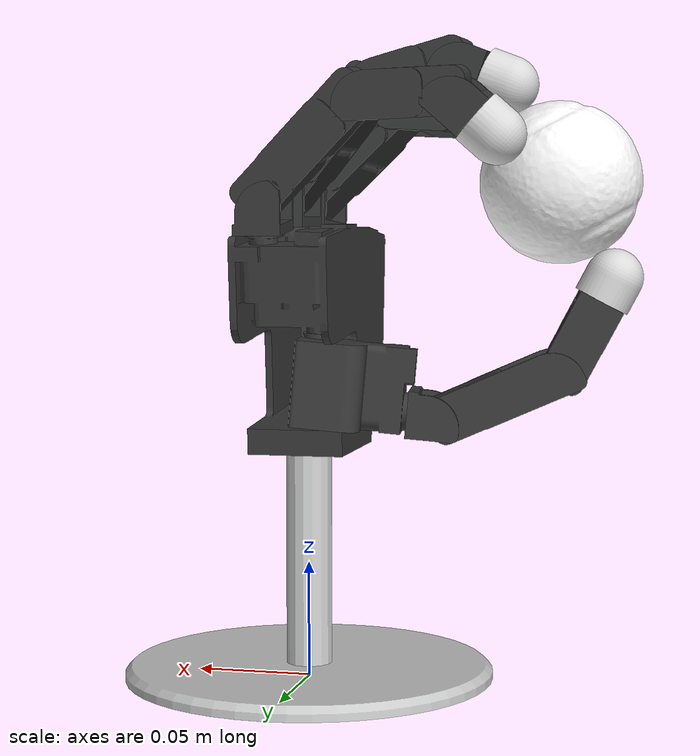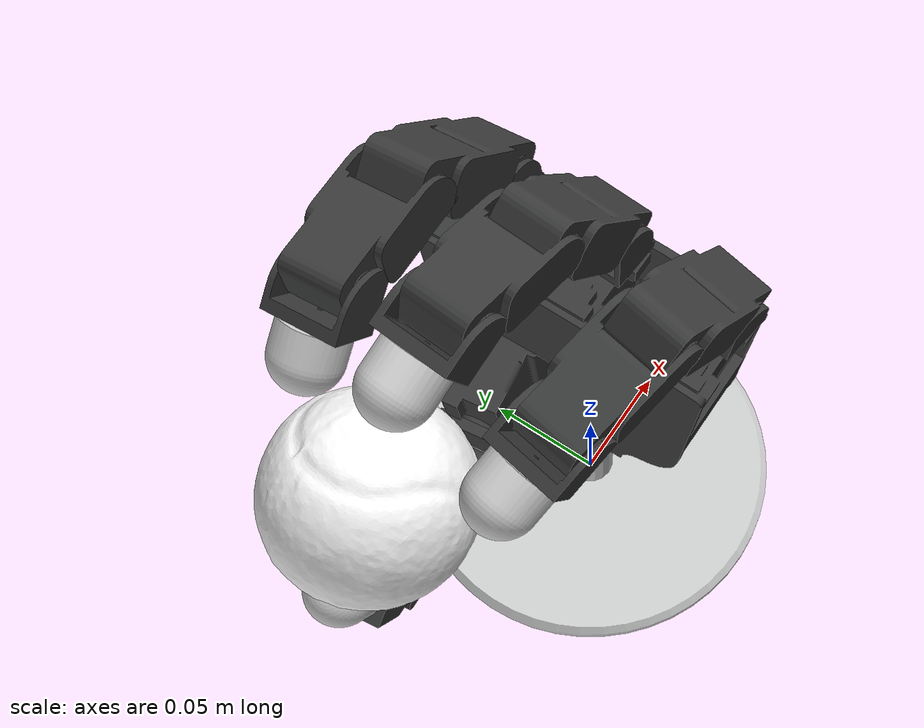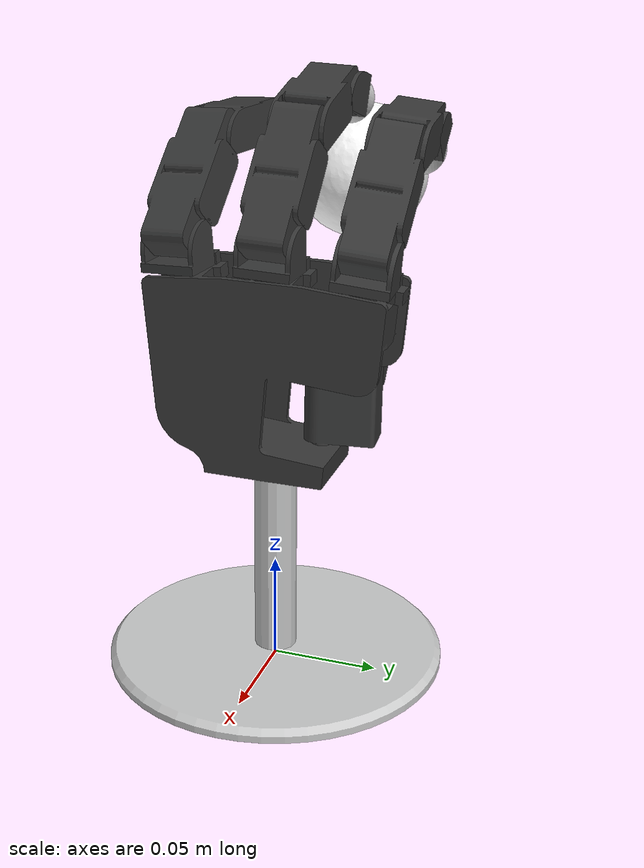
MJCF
<mujoco>
  <compiler angle="radian" meshdir="assets"/>
  <option>
    <flag/>
  </option>
  <statistic/>
  <asset>
    <texture type="2d" colorspace="linear" name="noise_normal" file="noise_normal.png.001"/>
    <texture type="2d" colorspace="sRGB" name="texture_map" file="texture_map.png"/>
    <material name="aluminum_rough" rgba="0.7946537 0.7973532 0.7977377 1.0" reflectance="0.5" roughness="0.5" metallic="1.0" texuniform="true" texrepeat="2.0 2.0">
      <layer texture="noise_normal" role="normal"/>
    </material>
    <material name="black_metal" rgba="0.220085 0.220813 0.2209164 1.0" reflectance="0.5" roughness="0.5" metallic="1.0" texuniform="true" texrepeat="8.0 8.0">
      <layer texture="noise_normal" role="normal"/>
    </material>
    <material name="black_rubber" rgba="0.8543058 0.8543058 0.8543058 1.0" reflectance="0.5" roughness="0.7" metallic="0.0" texuniform="true" texrepeat="16.0 16.0">
      <layer texture="noise_normal" role="normal"/>
    </material>
    <material name="material_0" rgba="1.0 1.0 1.0 1.0" reflectance="0.5" roughness="1.0" metallic="0.0">
      <layer texture="texture_map" role="rgb"/>
    </material>
    <material name="template" rgba="0.9063318 0.9063318 0.9063318 1.0" reflectance="0.5" roughness="0.5" metallic="0.0"/>
    <mesh name="base" file="base.obj"/>
    <mesh name="base_link" file="base_link.obj"/>
    <mesh name="link_0_0" file="link_0_0.obj"/>
    <mesh name="link_1_0" file="link_1_0.obj"/>
    <mesh name="link_2_0" file="link_2_0.obj"/>
    <mesh name="link_3_0" file="link_3_0.obj"/>
    <mesh name="link_3_0_tip" file="link_3_0_tip.obj"/>
    <mesh name="link_12_0_right" file="link_12_0_right.obj"/>
    <mesh name="link_13_0" file="link_13_0.obj"/>
    <mesh name="link_14_0" file="link_14_0.obj"/>
    <mesh name="link_15_0" file="link_15_0.obj"/>
    <mesh name="link_15_0_tip" file="link_15_0_tip.obj"/>
    <mesh name="ball" file="ball.obj"/>
  </asset>
  <worldbody>
    <geom name="base" pos="0.0 0.0 0.0" quat="1.0 0.0 0.0 0.0" type="mesh" mesh="base" material="aluminum_rough" group="2"/>
    <body name="palm" pos="0.008 0.0 0.195" quat="1.0 0.0 0.0 0.0" gravcomp="1.0">
      <geom name="ball" pos="-0.1172307 0.0058808 0.019121" quat="0.7071068 0.7071068 0.0 0.0" type="mesh" mesh="ball" material="material_0" group="2"/>
      <geom name="base_link" pos="0.0 0.0 0.0" quat="1.0 0.0 0.0 0.0" type="mesh" mesh="base_link" material="black_metal" group="2" contype="0" conaffinity="0" density="800.0"/>
      <geom name="GEO_Box" pos="-0.0093 0.0 -0.0475" quat="1.0 0.0 0.0 0.0" type="box" size="0.0204 0.0565 0.0475" material="template" group="3" density="800.0"/>
      <body name="ff_base" pos="0.0 0.0435 -0.001542" quat="0.9987252 -0.0436053 -0.0011092 0.0254042">
        <joint name="ffj0" pos="0.0 0.0 0.0" axis="0.0 0.0 1.0" type="hinge" range="-0.47 0.47" armature="0.01" damping="0.1"/>
        <geom name="GEO_Box_001" pos="0.0 0.0 0.0082" quat="0.9987252 0.0436053 0.0011092 -0.0254042" type="box" size="0.0098 0.01375 0.0082" material="template" group="3" density="800.0"/>
        <geom name="link_0_0" pos="0.0 0.0 0.0" quat="1.0 0.0 -0.0 -0.0" type="mesh" mesh="link_0_0" material="black_metal" group="2" contype="0" conaffinity="0" density="800.0"/>
        <body name="ff_proximal" pos="-0.0 0.0 0.0164" quat="0.9275916 0.0 -0.3735958 -0.0">
          <joint name="ffj1" pos="0.0 0.0 0.0" axis="-0.0 1.0 1e-07" type="hinge" range="-0.196 1.61" armature="0.01" damping="0.1"/>
          <geom name="GEO_Box_002" pos="0.0 0.0 0.027" quat="0.9259947 0.030957 0.3741484 -0.0398555" type="box" size="0.0098 0.01375 0.027" material="template" group="3" density="800.0"/>
          <geom name="link_1_0" pos="0.0 0.0 -0.0" quat="1.0 -0.0 0.0 0.0" type="mesh" mesh="link_1_0" material="black_metal" group="2" contype="0" conaffinity="0" density="800.0"/>
          <body name="ff_medial" pos="0.0 -0.0 0.0539999" quat="0.9275985 -0.0 -0.3735787 0.0">
            <joint name="ffj2" pos="0.0 0.0 0.0" axis="-0.0 1.0 1e-07" type="hinge" range="-0.174 1.709" armature="0.01" damping="0.1"/>
            <geom name="GEO_Box_003" pos="0.0 0.0 0.0192" quat="0.7191774 0.0138266 0.6929914 -0.0485347" type="box" size="0.0098 0.01375 0.0192" material="template" group="3" density="800.0"/>
            <geom name="link_2_0" pos="0.0 0.0 0.0" quat="1.0 0.0 0.0 0.0" type="mesh" mesh="link_2_0" material="black_metal" group="2" contype="0" conaffinity="0" density="800.0"/>
            <body name="ff_distal" pos="1e-07 0.0 0.0384" quat="0.9275892 0.0 -0.3736019 0.0">
              <joint name="ffj3" pos="0.0 0.0 0.0" axis="0.0 1.0 1e-07" type="hinge" range="-0.227 1.618" armature="0.01" damping="0.1"/>
              <geom name="GEO_Box_004" pos="0.0 0.0 0.008" quat="0.4081984 -0.0053074 0.9114973 -0.0501859" type="box" size="0.0098 0.01375 0.008" material="template" group="3" density="800.0"/>
              <geom name="link_3_0" pos="-0.0 0.0 0.0" quat="1.0 0.0 0.0 -0.0" type="mesh" mesh="link_3_0" material="black_metal" group="2" contype="0" conaffinity="0" density="800.0"/>
              <body name="ff_tip" pos="-0.0 0.0 -0.0" quat="1.0 0.0 1e-07 -0.0">
                <geom name="ff_tip_col" pos="0.0 0.0 0.019" quat="0.4081984 -0.0053074 0.9114972 -0.0501859" type="capsule" size="0.012 0.01" material="template" group="3" condim="6" friction="2.0 0.05 0.01" density="800.0"/>
                <geom name="link_3_0_tip" pos="0.0 -0.0 0.0267" quat="1.0 0.0 -0.0 0.0" type="mesh" mesh="link_3_0_tip" material="black_rubber" group="2" contype="0" conaffinity="0" density="800.0"/>
              </body>
            </body>
          </body>
        </body>
      </body>
      <body name="mf_base" pos="0.0 0.0 0.0007" quat="0.9995176 0.0 0.0 -0.0310589">
        <joint name="mfj0" pos="0.0 0.0 0.0" axis="0.0 0.0 1.0" type="hinge" range="-0.47 0.47" armature="0.01" damping="0.1"/>
        <geom name="GEO_Box_005" pos="0.0 0.0 0.0082" quat="0.9995176 0.0 0.0 0.0310589" type="box" size="0.0098 0.01375 0.0082" material="template" group="3" density="800.0"/>
        <geom name="link_001" pos="0.0 0.0 0.0" quat="1.0 0.0 0.0 0.0" type="mesh" mesh="link_0_0" material="black_metal" group="2" contype="0" conaffinity="0" density="800.0"/>
        <body name="mf_proximal" pos="-0.0 0.0 0.0164" quat="0.9427835 -0.0 -0.3334057 -0.0">
          <joint name="mfj1" pos="0.0 0.0 0.0" axis="-0.0 1.0 1e-07" type="hinge" range="-0.196 1.61" armature="0.01" damping="0.1"/>
          <geom name="GEO_Box_006" pos="0.0 0.0 0.027" quat="0.9423286 0.0103552 0.3332449 0.0292819" type="box" size="0.0098 0.01375 0.027" material="template" group="3" density="800.0"/>
          <geom name="link_002" pos="0.0 0.0 0.0" quat="1.0 -0.0 0.0 0.0" type="mesh" mesh="link_1_0" material="black_metal" group="2" contype="0" conaffinity="0" density="800.0"/>
          <body name="mf_medial" pos="1e-07 -0.0 0.054" quat="0.9507729 -0.0 -0.3098887 0.0">
            <joint name="mfj2" pos="0.0 0.0 0.0" axis="0.0 1.0 1e-07" type="hinge" range="-0.174 1.709" armature="0.01" damping="0.1"/>
            <geom name="GEO_Box_007" pos="0.0 0.0 0.0192" quat="0.7926716 0.0189196 0.6088572 0.0246314" type="box" size="0.0098 0.01375 0.0192" material="template" group="3" density="800.0"/>
            <geom name="link_003" pos="0.0 0.0 0.0" quat="1.0 0.0 -0.0 -0.0" type="mesh" mesh="link_2_0" material="black_metal" group="2" contype="0" conaffinity="0" density="800.0"/>
            <body name="mf_distal" pos="-0.0 0.0 0.0384" quat="0.9508801 -0.0 -0.3095596 -0.0">
              <joint name="mfj3" pos="0.0 0.0 0.0" axis="0.0 1.0 1e-07" type="hinge" range="-0.227 1.618" armature="0.01" damping="0.1"/>
              <geom name="GEO_Box_008" pos="0.0 0.0 0.008" quat="0.5652581 0.0256152 0.8243292 0.0175648" type="box" size="0.0098 0.01375 0.008" material="template" group="3" density="800.0"/>
              <geom name="link_004" pos="0.0 0.0 0.0" quat="1.0 0.0 0.0 -0.0" type="mesh" mesh="link_3_0" material="black_metal" group="2" contype="0" conaffinity="0" density="800.0"/>
              <body name="mf_tip" pos="-0.0 0.0 -0.0" quat="1.0 -0.0 0.0 -0.0">
                <geom name="link_3_0_001" pos="0.0 0.0 0.0267" quat="1.0 0.0 0.0 -0.0" type="mesh" mesh="link_3_0_tip" material="black_rubber" group="2" contype="0" conaffinity="0" density="800.0"/>
                <geom name="mf_tip_col" pos="0.0 0.0 0.019" quat="0.5652581 0.0256152 0.8243292 0.0175648" type="capsule" size="0.012 0.01" material="template" group="3" condim="6" friction="2.0 0.05 0.01" density="800.0"/>
              </body>
            </body>
          </body>
        </body>
      </body>
      <body name="rf_base" pos="0.0 -0.0435 -0.001542" quat="0.9960707 0.0434894 -0.0033652 -0.0770747">
        <joint name="rfj0" pos="0.0 0.0 0.0" axis="0.0 0.0 1.0" type="hinge" range="-0.47 0.47" armature="0.01" damping="0.1"/>
        <geom name="GEO_Box_009" pos="0.0 0.0 0.0082" quat="0.9960707 -0.0434894 0.0033652 0.0770747" type="box" size="0.0098 0.01375 0.0082" material="template" group="3" density="800.0"/>
        <geom name="link_005" pos="0.0 0.0 0.0" quat="1.0 -0.0 0.0 0.0" type="mesh" mesh="link_0_0" material="black_metal" group="2" contype="0" conaffinity="0" density="800.0"/>
        <body name="rf_proximal" pos="0.0 0.0 0.0164" quat="0.9204001 -0.0 -0.3909777 0.0">
          <joint name="rfj1" pos="0.0 0.0 0.0" axis="0.0 1.0 1e-07" type="hinge" range="-0.196 1.61" armature="0.01" damping="0.1"/>
          <geom name="GEO_Box_010" pos="0.0 0.0 0.027" quat="0.9154679 -0.0098932 0.3925388 0.0879429" type="box" size="0.0098 0.01375 0.027" material="template" group="3" density="800.0"/>
          <geom name="link_006" pos="0.0 0.0 0.0" quat="1.0 -0.0 0.0 0.0" type="mesh" mesh="link_1_0" material="black_metal" group="2" contype="0" conaffinity="0" density="800.0"/>
          <body name="rf_medial" pos="0.0 0.0 0.054" quat="0.916375 0.0 -0.400321 0.0">
            <joint name="rfj2" pos="0.0 0.0 0.0" axis="0.0 1.0 1e-07" type="hinge" range="-0.174 1.709" armature="0.01" damping="0.1"/>
            <geom name="GEO_Box_011" pos="0.0 0.0 0.0192" quat="0.6817704 0.0261396 0.7261937 0.0845491" type="box" size="0.0098 0.01375 0.0192" material="template" group="3" density="800.0"/>
            <geom name="link_007" pos="0.0 0.0 0.0" quat="1.0 0.0 0.0 0.0" type="mesh" mesh="link_2_0" material="black_metal" group="2" contype="0" conaffinity="0" density="800.0"/>
            <body name="rf_distal" pos="0.0 0.0 0.0384" quat="0.9841714 -0.0 -0.1772194 0.0">
              <joint name="rfj3" pos="0.0 0.0 0.0" axis="0.0 1.0 1e-07" type="hinge" range="-0.227 1.618" armature="0.01" damping="0.1"/>
              <geom name="GEO_Box_012" pos="0.0 0.0 0.008" quat="0.5422834 0.0407096 0.835522 0.0785784" type="box" size="0.0098 0.01375 0.008" material="template" group="3" density="800.0"/>
              <geom name="link_008" pos="0.0 0.0 0.0" quat="1.0 -0.0 -0.0 0.0" type="mesh" mesh="link_3_0" material="black_metal" group="2" contype="0" conaffinity="0" density="800.0"/>
              <body name="rf_tip" pos="0.0 -0.0 0.0" quat="1.0 -0.0 -1e-07 -0.0">
                <geom name="link_009" pos="0.0 0.0 0.0267" quat="1.0 -0.0 0.0 0.0" type="mesh" mesh="link_3_0_tip" material="black_rubber" group="2" contype="0" conaffinity="0" density="800.0"/>
                <geom name="rf_tip_col" pos="0.0 0.0 0.019" quat="0.5422832 0.0407096 0.8355221 0.0785784" type="capsule" size="0.012 0.01" material="template" group="3" condim="6" friction="2.0 0.05 0.01" density="800.0"/>
              </body>
            </body>
          </body>
        </body>
      </body>
      <body name="th_base" pos="-0.0182 0.019333 -0.045987" quat="0.674098 0.0489692 -0.7356497 0.044872">
        <joint name="thj0" pos="0.0 0.0 0.0" axis="-1.0 -1e-07 -1e-07" type="hinge" range="0.263 1.396" armature="0.01" damping="0.1"/>
        <geom name="GEO_Box_013" pos="-0.0179 0.009 0.0145" quat="0.6740979 -0.0489692 0.7356498 -0.044872" type="box" size="0.0179 0.017 0.02275" material="template" group="3" density="800.0"/>
        <geom name="link_12_0_right" pos="-0.0 0.0 -0.0" quat="1.0 -0.0 0.0 0.0" type="mesh" mesh="link_12_0_right" material="black_metal" group="2" contype="0" conaffinity="0" density="800.0"/>
        <body name="th_proximal" pos="-0.027 0.005 0.0399" quat="1.0 -0.0 0.0 -0.0">
          <joint name="thj1" pos="0.0 0.0 0.0" axis="0.0 0.0 1.0" type="hinge" range="-0.105 1.163" armature="0.01" damping="0.1"/>
          <geom name="GEO_Box_014" pos="0.0 0.0 0.00885" quat="0.674098 -0.0489692 0.7356497 -0.044872" type="box" size="0.0098 0.01375 0.00885" material="template" group="3" density="800.0"/>
          <geom name="link_13_0" pos="-0.0 -0.0 -0.0" quat="1.0 -0.0 0.0 0.0" type="mesh" mesh="link_13_0" material="black_metal" group="2" contype="0" conaffinity="0" density="800.0"/>
          <body name="th_medial" pos="0.0 0.0 0.0177" quat="0.9693884 -0.0 0.2455324 0.0">
            <joint name="thj2" pos="0.0 0.0 0.0" axis="-0.0 1.0 1e-07" type="hinge" range="-0.189 1.6440001" armature="0.01" damping="0.1"/>
            <geom name="GEO_Box_015" pos="0.0 0.0 0.0257" quat="0.8340885 -0.0364527 0.5476175 -0.0555219" type="box" size="0.0098 0.01375 0.0257" material="template" group="3" density="800.0"/>
            <geom name="link_14_0" pos="-0.0 -0.0 0.0" quat="1.0 -0.0 0.0 -0.0" type="mesh" mesh="link_14_0" material="black_metal" group="2" contype="0" conaffinity="0" density="800.0"/>
            <body name="th_distal" pos="-0.0 0.0 0.0514" quat="0.9433336 -0.0 0.3318459 0.0">
              <joint name="thj3" pos="0.0 0.0 0.0" axis="0.0 1.0 1e-07" type="hinge" range="-0.162 1.719" armature="0.01" damping="0.1"/>
              <geom name="GEO_Box_016" pos="0.0 0.0 0.0157" quat="0.9685483 -0.0159623 0.2397971 -0.0644723" type="box" size="0.0098 0.01375 0.0157" material="template" group="3" density="800.0"/>
              <geom name="link_15_0" pos="0.0 0.0 0.0" quat="1.0 0.0 0.0 0.0" type="mesh" mesh="link_15_0" material="black_metal" group="2" contype="0" conaffinity="0" density="800.0"/>
              <body name="th_tip" pos="-0.0 0.0 1e-07" quat="1.0 0.0 1e-07 0.0">
                <geom name="link_15_0_tip" pos="-0.0 0.0 0.0423" quat="1.0 0.0 0.0 0.0" type="mesh" mesh="link_15_0_tip" material="black_rubber" group="2" contype="0" conaffinity="0" density="800.0"/>
                <geom name="th_tip_col" pos="0.0 0.0 0.035" quat="0.9685484 -0.0159623 0.2397971 -0.0644723" type="capsule" size="0.012 0.008" material="template" group="3" condim="6" friction="2.0 0.05 0.01" density="800.0"/>
              </body>
            </body>
          </body>
        </body>
      </body>
    </body>
  </worldbody>
  <contact>
    <exclude body1="palm" body2="ff_base"/>
    <exclude body1="palm" body2="mf_base"/>
    <exclude body1="palm" body2="rf_base"/>
    <exclude body1="palm" body2="th_base"/>
    <exclude body1="palm" body2="th_proximal"/>
  </contact>
  <actuator>
    <position name="ffa0" joint="ffj0" ctrlrange="-0.47 0.47"/>
    <position name="ffa1" joint="ffj1" ctrlrange="-0.196 1.61"/>
    <position name="ffa2" joint="ffj2" ctrlrange="-0.174 1.709"/>
    <position name="ffa3" joint="ffj3" ctrlrange="-0.227 1.618"/>
    <position name="mfa0" joint="mfj0" ctrlrange="-0.47 0.47"/>
    <position name="mfa1" joint="mfj1" ctrlrange="-0.196 1.61"/>
    <position name="mfa2" joint="mfj2" ctrlrange="-0.174 1.709"/>
    <position name="mfa3" joint="mfj3" ctrlrange="-0.227 1.618"/>
    <position name="rfa0" joint="rfj0" ctrlrange="-0.47 0.47"/>
    <position name="rfa1" joint="rfj1" ctrlrange="-0.196 1.61"/>
    <position name="rfa2" joint="rfj2" ctrlrange="-0.174 1.709"/>
    <position name="rfa3" joint="rfj3" ctrlrange="-0.227 1.618"/>
    <position name="tha0" joint="thj0" ctrlrange="0.263 1.396"/>
    <position name="tha1" joint="thj1" ctrlrange="-0.105 1.163"/>
    <position name="tha2" joint="thj2" ctrlrange="-0.189 1.6440001"/>
    <position name="tha3" joint="thj3" ctrlrange="-0.162 1.719"/>
  </actuator>
</mujoco>
